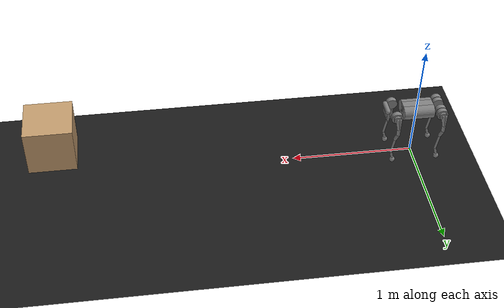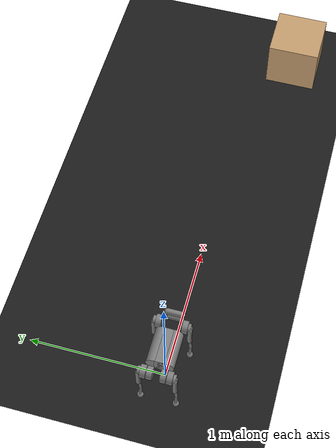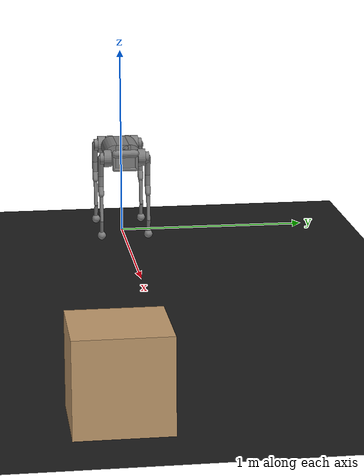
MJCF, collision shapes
<mujoco model="scene_box_camera">
  <include file="go1.xml"/>
  <include file="../box/boxes.xml"/>

  <statistic center="0 0 0.25" extent="1"/>

  <visual>
    <headlight diffuse="0 0 0" ambient="0 0 0" specular="0 0 0"/>
    <rgba haze="0 0 0 1"/>
    <global azimuth="-130" elevation="-20"/>
  </visual>

  <asset>
    <texture type="skybox" builtin="gradient"
             rgb1="0.45 0.60 0.85"
             rgb2="0.20 0.36 0.55"
             width="512" height="3072"/>
    <texture name="black_grid" type="2d" builtin="checker"
             rgb1="0.08 0.08 0.08"
             rgb2="0.13 0.13 0.13"
             width="32" height="32"/>
    <material name="black_tiles"
              texture="black_grid"
              texrepeat="16 16"
              reflectance="0.08"
              rgba="1 1 1 1"/>
  </asset>

  <worldbody>
    <light name="sun" directional="true"
           diffuse="1.1 1.08 1.0"
           ambient="0.45 0.5 0.75"
           pos="0 0 6"
           dir="0 0 -1"
           castshadow="true"/>

    <geom name="floor" size="0 0 .125" type="plane"
          material="black_tiles"
          friction="1 0.005 0.0001"
          conaffinity="15" condim="3" />
  </worldbody>
</mujoco>

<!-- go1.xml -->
<!-- Model taken from MuJoCo Menagerie (https://github.com/google-deepmind/mujoco_menagerie/blob/main/unitree_go1/go1.xml) -->
<mujoco model="go1">
  <compiler angle="radian" meshdir="meshes" autolimits="true"/>
  <option timestep='0.001'/>

  <option cone="elliptic" impratio="100"/>

  <default>
    <general
      biastype="affine"
      gainprm="0 0 0 0 0 0 0 0 0 0"
      biasprm="0 0 0 0 0 0 0 0 0 0"
      forcerange="-23.7 23.7"
    />
    <default class="go1">
      <geom friction="0.6" margin="0.001" condim="1"/>
      <joint axis="0 1 0" damping="2" armature="0.01" frictionloss="0.2"/>
      <default class="abduction">
        <joint axis="1 0 0" damping="1" range="-0.863 0.863"/>
        <general forcerange="-23.7 23.7"/>
      </default>
      <default class="hip">
        <joint range="-0.686 4.501"/>
        <general forcerange="-23.7 23.7"/>
      </default>
      <default class="knee">
        <joint range="-2.818 -0.888"/>
        <general forcerange="-35.55 35.55"/>
      </default>
      <default class="visual">
        <geom type="mesh" contype="0" conaffinity="0" group="2" material="dark"/>
      </default>
      <default class="collision">
        <geom group="3" type="capsule"/>
        <default class="hip_left1">
          <geom size="0.046 0.02" pos="0 0.045 0" quat="1 1 0 0" type="cylinder"/>
        </default>
        <default class="hip_left2">
          <geom size="0.031 0.02" pos="0 0.065 0" quat="1 1 0 0" type="cylinder"/>
        </default>
        <default class="hip_left3">
          <geom size="0.046 0.02" quat="1 1 0 0" type="cylinder"/>
        </default>
        <default class="hip_right1">
          <geom size="0.046 0.02" pos="0 -0.045 0" quat="1 1 0 0" type="cylinder"/>
        </default>
        <default class="hip_right2">
          <geom size="0.031 0.02" pos="0 -0.065 0" quat="1 1 0 0" type="cylinder"/>
        </default>
        <default class="hip_right3">
          <geom size="0.046 0.02" quat="1 1 0 0" type="cylinder"/>
        </default>
        <default class="thigh1">
          <geom size="0.015" fromto="-0.02 0 0 -0.02 0 -0.16"/>
        </default>
        <default class="thigh2">
          <geom size="0.015" fromto="0 0 0 -0.02 0 -0.1"/>
        </default>
        <default class="thigh3">
          <geom size="0.015" fromto="-0.02 0 -0.16 0 0 -0.2"/>
        </default>
        <default class="calf1">
          <geom size="0.01" fromto="0 0 0 0.02 0 -0.13"/>
        </default>
        <default class="calf2">
          <geom size="0.01" fromto="0.02 0 -0.13 0 0 -0.2"/>
        </default>
        <default class="foot">
          <geom type="sphere" size="0.023" pos="0 0 -0.213" priority="1" solimp="0.015 1 0.023" condim="6"
            friction="0.8 0.02 0.01"/>
        </default>
      </default>
    </default>
  </default>

  <asset>
    <material name="dark" rgba="0.2 0.2 0.2 1"/>
    <mesh class="go1" file="trunk.stl"/>
    <mesh class="go1" file="hip.stl"/>
    <mesh class="go1" file="thigh_mirror.stl"/>
    <mesh class="go1" file="calf.stl"/>
    <mesh class="go1" file="thigh.stl"/>
  </asset>

  <worldbody>
    <light name="spotlight" mode="targetbodycom" target="trunk" pos="0 -1 2"/>
    <body name="trunk" pos="0 0 0.445" childclass="go1">
      <camera name="tracking" mode="trackcom" pos="0 -1 0.8" xyaxes="1 0 0 0 1 1"/>
      <!-- Camera set to Ry(−60∘)⊗Rz(+90∘)⊗Rzlocal(180∘) -->
      <camera name="tiled_camera" pos="0.2 0 0.2" quat="-0.6123724 -0.3535534 0.3535534 0.6123724" fovy="60"/>

      <site name="head" pos="0.3 0 0" rgba="1 0 0 1" size="0.02" group="5"/>
      <inertial pos="0.0223 0.002 -0.0005" quat="-0.00342088 0.705204 0.000106698 0.708996" mass="5.204"
        diaginertia="0.0716565 0.0630105 0.0168101"/>
      <freejoint/>
      <geom class="collision" size="0.125 0.04 0.057" type="box"/>
      <geom class="collision" quat="1 0 1 0" pos="0 -0.04 0" size="0.058 0.125" type="cylinder"/>
      <geom class="collision" quat="1 0 1 0" pos="0 +0.04 0" size="0.058 0.125" type="cylinder"/>
      <geom class="collision" pos="0.25 0 0" size="0.005 0.06 0.05" type="box"/>
      <geom class="collision" pos="0.25 0.06 -0.01" size="0.009 0.035"/>
      <geom class="collision" pos="0.25 -0.06 -0.01" size="0.009 0.035"/>
      <geom class="collision" pos="0.25 0 -0.05" size="0.01 0.06" quat="1 1 0 0"/>
      <geom class="collision" pos="0.255 0 0.0355" size="0.021 0.052" quat="1 1 0 0"/>
      <site name="imu" pos="0 0 0"/>
      <body name="FR_hip" pos="0.1881 -0.04675 0">
        <inertial pos="-0.0049166 0.00762615 -8.865e-05" quat="0.507341 0.514169 0.495027 0.482891" mass="0.68"
          diaginertia="0.000734064 0.000468438 0.000398719"/>
        <joint class="abduction" name="FR_hip_joint"/>
        <geom class="hip_right1"/>
        <geom class="hip_right2"/>
        <body name="FR_thigh" pos="0 -0.08 0">
          <inertial pos="-0.00304722 0.019315 -0.0305004" quat="0.65243 -0.0272313 0.0775126 0.753383" mass="1.009"
            diaginertia="0.00478717 0.00460903 0.000709268"/>
          <joint class="hip" name="FR_thigh_joint"/>
          <geom class="thigh1"/>
          <geom class="thigh2"/>
          <geom class="thigh3"/>
          <body name="FR_calf" pos="0 0 -0.213">
            <inertial pos="0.00429862 0.000976676 -0.146197" quat="0.691246 0.00357467 0.00511118 0.722592"
              mass="0.195862" diaginertia="0.00149767 0.00148468 3.58427e-05"/>
            <joint class="knee" name="FR_calf_joint"/>
            <geom class="visual" mesh="calf"/>
            <geom class="calf1"/>
            <geom class="calf2"/>
            <geom name="FR" class="foot"/>
            <site name="FR" pos="0 0 -0.213" type="sphere" size="0.023" group="5"/>
          </body>
        </body>
      </body>
      <body name="FL_hip" pos="0.1881 0.04675 0">
        <inertial pos="-0.0049166 -0.00762615 -8.865e-05" quat="0.482891 0.495027 0.514169 0.507341" mass="0.68"
          diaginertia="0.000734064 0.000468438 0.000398719"/>
        <joint class="abduction" name="FL_hip_joint"/>
        <geom class="hip_left1"/>
        <geom class="hip_left2"/>
        <body name="FL_thigh" pos="0 0.08 0">
          <inertial pos="-0.00304722 -0.019315 -0.0305004" quat="0.753383 0.0775126 -0.0272313 0.65243" mass="1.009"
            diaginertia="0.00478717 0.00460903 0.000709268"/>
          <joint class="hip" name="FL_thigh_joint"/>
          <geom class="thigh1"/>
          <geom class="thigh2"/>
          <geom class="thigh3"/>
          <body name="FL_calf" pos="0 0 -0.213">
            <inertial pos="0.00429862 0.000976676 -0.146197" quat="0.691246 0.00357467 0.00511118 0.722592"
              mass="0.195862" diaginertia="0.00149767 0.00148468 3.58427e-05"/>
            <joint class="knee" name="FL_calf_joint"/>
            <geom class="visual" mesh="calf"/>
            <geom class="calf1"/>
            <geom class="calf2"/>
            <geom name="FL" class="foot"/>
            <site name="FL" pos="0 0 -0.213" type="sphere" size="0.023" group="5"/>
          </body>
        </body>
      </body>
      <body name="RR_hip" pos="-0.1881 -0.04675 0">
        <inertial pos="0.0049166 0.00762615 -8.865e-05" quat="0.495027 0.482891 0.507341 0.514169" mass="0.68"
          diaginertia="0.000734064 0.000468438 0.000398719"/>
        <joint class="abduction" name="RR_hip_joint"/>
        <geom class="visual" quat="0 0 0 -1" mesh="hip"/>
        <geom class="hip_right1"/>
        <geom class="hip_right2"/>
        <geom class="hip_right3"/>
        <body name="RR_thigh" pos="0 -0.08 0">
          <inertial pos="-0.00304722 0.019315 -0.0305004" quat="0.65243 -0.0272313 0.0775126 0.753383" mass="1.009"
            diaginertia="0.00478717 0.00460903 0.000709268"/>
          <joint class="hip" name="RR_thigh_joint"/>
          <geom class="visual" mesh="thigh_mirror"/>
          <geom class="thigh1"/>
          <geom class="thigh2"/>
          <geom class="thigh3"/>
          <body name="RR_calf" pos="0 0 -0.213">
            <inertial pos="0.00429862 0.000976676 -0.146197" quat="0.691246 0.00357467 0.00511118 0.722592"
              mass="0.195862" diaginertia="0.00149767 0.00148468 3.58427e-05"/>
            <joint class="knee" name="RR_calf_joint"/>
            <geom class="visual" mesh="calf"/>
            <geom class="calf1"/>
            <geom class="calf2"/>
            <geom name="RR" class="foot"/>
            <site name="RR" pos="0 0 -0.213" type="sphere" size="0.023" group="5"/>
          </body>
        </body>
      </body>
      <body name="RL_hip" pos="-0.1881 0.04675 0">
        <inertial pos="0.0049166 -0.00762615 -8.865e-05" quat="0.514169 0.507341 0.482891 0.495027" mass="0.68"
          diaginertia="0.000734064 0.000468438 0.000398719"/>
        <joint class="abduction" name="RL_hip_joint"/>
        <geom class="visual" quat="0 0 1 0" mesh="hip"/>
        <geom class="hip_left1"/>
        <geom class="hip_left2"/>
        <geom class="hip_left3"/>
        <body name="RL_thigh" pos="0 0.08 0">
          <inertial pos="-0.00304722 -0.019315 -0.0305004" quat="0.753383 0.0775126 -0.0272313 0.65243" mass="1.009"
            diaginertia="0.00478717 0.00460903 0.000709268"/>
          <joint class="hip" name="RL_thigh_joint"/>
          <geom class="visual" mesh="thigh"/>
          <geom class="thigh1"/>
          <geom class="thigh2"/>
          <geom class="thigh3"/>
          <body name="RL_calf" pos="0 0 -0.213">
            <inertial pos="0.00429862 0.000976676 -0.146197" quat="0.691246 0.00357467 0.00511118 0.722592"
              mass="0.195862" diaginertia="0.00149767 0.00148468 3.58427e-05"/>
            <joint class="knee" name="RL_calf_joint"/>
            <geom class="visual" mesh="calf"/>
            <geom class="calf1"/>
            <geom class="calf2"/>
            <geom name="RL" class="foot"/>
            <site name="RL" pos="0 0 -0.213" type="sphere" size="0.023" group="5"/>
          </body>
        </body>
      </body>
    </body>
  </worldbody>

  <actuator>
    <general class="abduction" name="FR_hip_joint" joint="FR_hip_joint"/>
    <general class="hip" name="FR_thigh_joint" joint="FR_thigh_joint"/>
    <general class="knee" name="FR_calf_joint" joint="FR_calf_joint"/>
    <general class="abduction" name="FL_hip_joint" joint="FL_hip_joint"/>
    <general class="hip" name="FL_thigh_joint" joint="FL_thigh_joint"/>
    <general class="knee" name="FL_calf_joint" joint="FL_calf_joint"/>
    <general class="abduction" name="RR_hip_joint" joint="RR_hip_joint"/>
    <general class="hip" name="RR_thigh_joint" joint="RR_thigh_joint"/>
    <general class="knee" name="RR_calf_joint" joint="RR_calf_joint"/>
    <general class="abduction" name="RL_hip_joint" joint="RL_hip_joint"/>
    <general class="hip" name="RL_thigh_joint" joint="RL_thigh_joint"/>
    <general class="knee" name="RL_calf_joint" joint="RL_calf_joint"/>
  </actuator>

  <sensor>
    <!-- Trunk Sensors -->
    <framepos name="root_pos" objtype="body" objname="trunk"/>
    <framequat name="root_quat" objtype="body" objname="trunk"/>
    <framelinvel name="root_linvel" objtype="body" objname="trunk"/>
    <frameangvel name="root_angvel" objtype="body" objname="trunk"/>

    <!-- IMU Sensors -->
    <framequat name="torso_imu_quat" objtype="site" objname="imu"/>
    <accelerometer name="torso_imu_acc" site="imu"/>
    <gyro name="torso_imu_gyro" site="imu"/>

    <!-- Motor Encoders-->
    <actuatorpos name="FR_hip_joint_pos" actuator="FR_hip_joint"/>
    <actuatorpos name="FR_thigh_joint_pos" actuator="FR_thigh_joint"/>
    <actuatorpos name="FR_calf_joint_pos" actuator="FR_calf_joint"/>
    <actuatorpos name="FL_hip_joint_pos" actuator="FL_hip_joint"/>
    <actuatorpos name="FL_thigh_joint_pos" actuator="FL_thigh_joint"/>
    <actuatorpos name="FL_calf_joint_pos" actuator="FL_calf_joint"/>
    <actuatorpos name="RR_hip_joint_pos" actuator="RR_hip_joint"/>
    <actuatorpos name="RR_thigh_joint_pos" actuator="RR_thigh_joint"/>
    <actuatorpos name="RR_calf_joint_pos" actuator="RR_calf_joint"/>
    <actuatorpos name="RL_hip_joint_pos" actuator="RL_hip_joint"/>
    <actuatorpos name="RL_thigh_joint_pos" actuator="RL_thigh_joint"/>
    <actuatorpos name="RL_calf_joint_pos" actuator="RL_calf_joint"/>

    <actuatorvel name="FR_hip_joint_vel" actuator="FR_hip_joint"/>
    <actuatorvel name="FR_thigh_joint_vel" actuator="FR_thigh_joint"/>
    <actuatorvel name="FR_calf_joint_vel" actuator="FR_calf_joint"/>
    <actuatorvel name="FL_hip_joint_vel" actuator="FL_hip_joint"/>
    <actuatorvel name="FL_thigh_joint_vel" actuator="FL_thigh_joint"/>
    <actuatorvel name="FL_calf_joint_vel" actuator="FL_calf_joint"/>
    <actuatorvel name="RR_hip_joint_vel" actuator="RR_hip_joint"/>
    <actuatorvel name="RR_thigh_joint_vel" actuator="RR_thigh_joint"/>
    <actuatorvel name="RR_calf_joint_vel" actuator="RR_calf_joint"/>
    <actuatorvel name="RL_hip_joint_vel" actuator="RL_hip_joint"/>
    <actuatorvel name="RL_thigh_joint_vel" actuator="RL_thigh_joint"/>
    <actuatorvel name="RL_calf_joint_vel" actuator="RL_calf_joint"/>

    <actuatorfrc name="FR_hip_joint_frc" actuator="FR_hip_joint"/>
    <actuatorfrc name="FR_thigh_joint_frc" actuator="FR_thigh_joint"/>
    <actuatorfrc name="FR_calf_joint_frc" actuator="FR_calf_joint"/>
    <actuatorfrc name="FL_hip_joint_frc" actuator="FL_hip_joint"/>
    <actuatorfrc name="FL_thigh_joint_frc" actuator="FL_thigh_joint"/>
    <actuatorfrc name="FL_calf_joint_frc" actuator="FL_calf_joint"/>
    <actuatorfrc name="RR_hip_joint_frc" actuator="RR_hip_joint"/>
    <actuatorfrc name="RR_thigh_joint_frc" actuator="RR_thigh_joint"/>
    <actuatorfrc name="RR_calf_joint_frc" actuator="RR_calf_joint"/>
    <actuatorfrc name="RL_hip_joint_frc" actuator="RL_hip_joint"/>
    <actuatorfrc name="RL_thigh_joint_frc" actuator="RL_thigh_joint"/>
    <actuatorfrc name="RL_calf_joint_frc" actuator="RL_calf_joint"/>

  </sensor>

	<equality>
		<weld name="world_root" active="true" body1="trunk" relpose="0 0 -0.405 1 0 0 0"/>
	</equality>

  <keyframe>
    <key name="home" qpos="0 0 0.27 1 0 0 0 0 0.9 -1.8 0 0.9 -1.8 0 0.9 -1.8 0 0.9 -1.8"
      ctrl="0 0.9 -1.8 0 0.9 -1.8 0 0.9 -1.8 0 0.9 -1.8"/>
  </keyframe>
</mujoco>

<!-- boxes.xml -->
<mujoco model="cardboard_box">
  mpiler angle="radian"/>
  <option timestep='0.001'/>

  <asset>
    <material name="cardboard"
          rgba="0.7569 0.6039 0.4235 1.0"
          reflectance="0.1"/>
  </asset>

  <worldbody>
    <body name="cube" pos="3.0 -0.3 0.2">
      <freejoint/>
      <geom name="cube_geom"
            type="box"
            size="0.2 0.2 0.2"
            material="cardboard"
            friction="1.0 0.005 0.0001"
            mass="1.0"
            contype="1" conaffinity="1"/>
    </body>
  </worldbody>
</mujoco>
